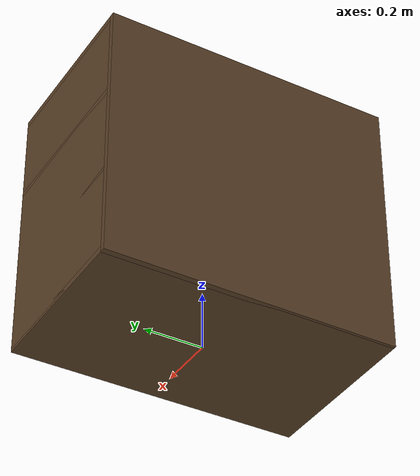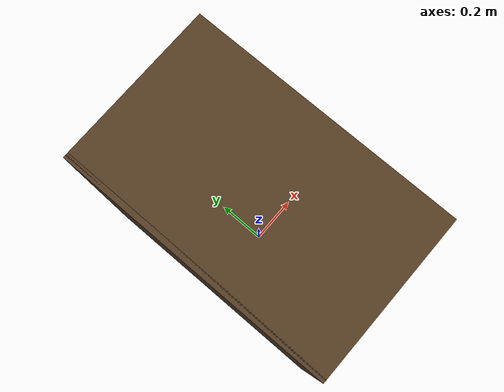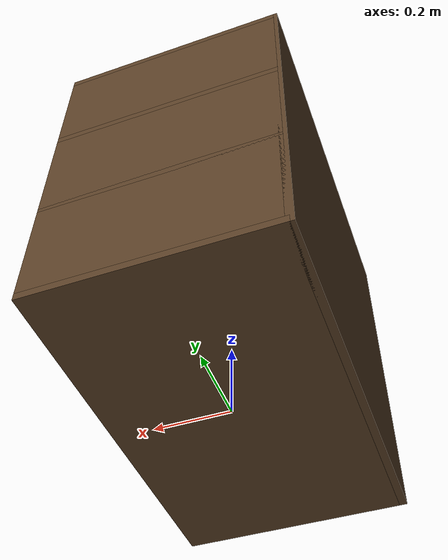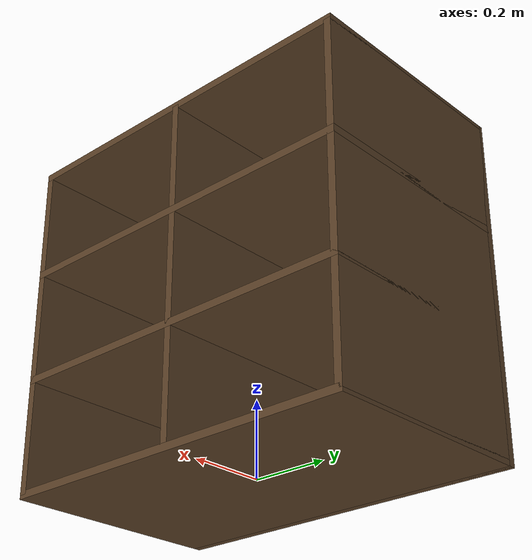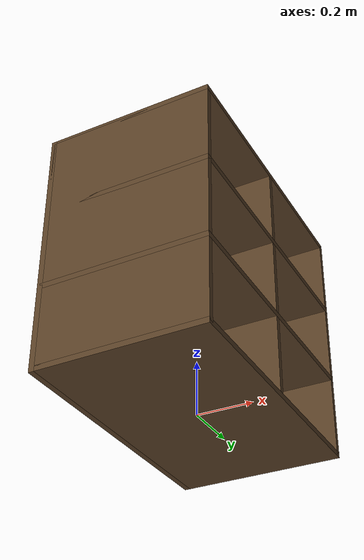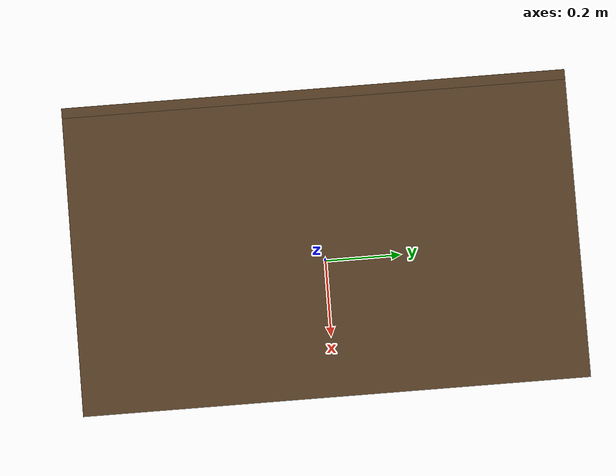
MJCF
<mujoco model="bookshelf_deep_thick">
  <compiler angle="radian"/>

  <asset>
    <texture type="2d" name="light_wood_deep" file="light_wood_v3.png" />
    <material name="wood_mat_deep" texture="light_wood_deep" specular="0.5" shininess="0.5" rgba="0.5 0.5 0.5 1" />
  </asset>

  <worldbody>
    <body name="body_bookshelf_deep_thick" pos="0 0 0">

      <!-- back panel (depth doubled) -->
      <geom type="box" size="0.01 0.5 0.46" pos="-0.30 0.0 0.45" material="wood_mat_deep" />

      <!-- shelves (depth doubled in x) -->
      <geom type="box" size="0.30 0.5 0.01" pos="0.0 0.0 0.0" material="wood_mat_deep" />
      <geom type="box" size="0.30 0.5 0.01" pos="0.0 0.0 0.3" material="wood_mat_deep" />
      <geom type="box" size="0.30 0.5 0.01" pos="0.0 0.0 0.6" material="wood_mat_deep" />
      <geom type="box" size="0.30 0.5 0.01" pos="0.0 0.0 0.9" material="wood_mat_deep" />

      <!-- thin pillars (unchanged style) -->
      <geom type="box" size="0.30 0.01 0.45" pos="0. 0.49 0.45" material="wood_mat_deep" />
      <geom type="box" size="0.30 0.01 0.45" pos="0. -0.49 0.45" material="wood_mat_deep" />
      <geom type="box" size="0.30 0.01 0.45" pos="0. 0.0 0.45" material="wood_mat_deep" />

    </body>
  </worldbody>
</mujoco>
